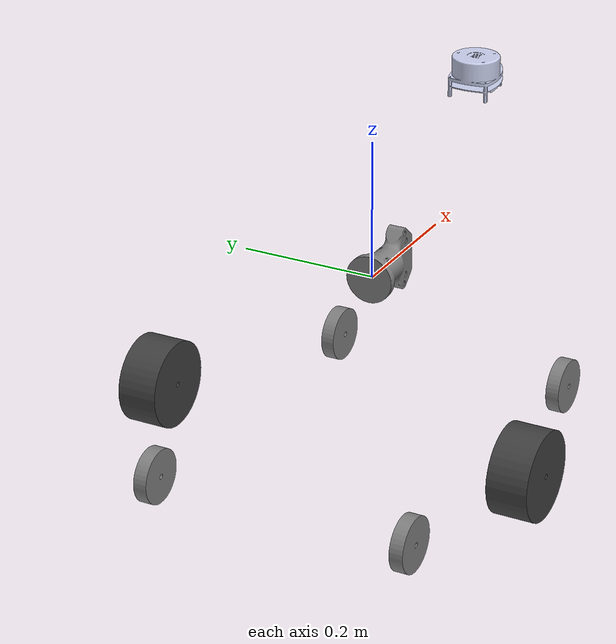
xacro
<?xml version="1.0" encoding="utf-8"?>
<robot xmlns:xacro="http://www.ros.org/wiki/xacro" name="Elevex">

  <!-- BASE_FOOTPRINT LINK -->

  <joint name="base_footprint_joint" type="fixed">
      <parent link="base_link"/>
      <child link="base_footprint"/>
      <origin xyz="0.0488207268870813 0 -0.28" rpy="0 0 0"/>
  </joint>

  <link name="base_footprint">
  </link>

  <link
    name="base_link">
    <inertial>
      <origin
        xyz="0.00426609249383225 0.000877292079499631 0.0902034810968709"
        rpy="0 0 0" />
      <mass
        value="28.9176072607185" />
      <inertia
        ixx="0.603223590621797"
        ixy="6.68320790910261E-05"
        ixz="0.0110170960141918"
        iyy="1.12817185736788"
        iyz="-3.72813828903675E-06"
        izz="1.48515032958934" />
    </inertial>
    <visual>
      <origin
        xyz="0 0 0"
        rpy="0 0 0" />
      <geometry>
        <mesh
          filename="file://$(find robot)/meshes/base_link.STL" />
      </geometry>
      <material
        name="">
        <color
          rgba="0.501960784313725 0.501960784313725 0.501960784313725 1" />
      </material>
    </visual>
    <collision>
      <origin
        xyz="0 0 0"
        rpy="0 0 0" />
      <geometry>
        <mesh
          filename="file://$(find robot)/meshes/base_link.STL" />
      </geometry>
    </collision>
  </link>
  <link
    name="Right_wheel_drive">
    <inertial>
      <origin
        xyz="0 0 -0.03"
        rpy="0 0 0" />
      <mass
        value="0.793377808737566" />
      <inertia
        ixx="0.00107919216433527"
        ixy="7.3436690885674E-21"
        ixz="-1.09101522048314E-19"
        iyy="0.00107919216433527"
        iyz="-7.23962882018601E-20"
        izz="0.00168235764342801" />
    </inertial>
    <visual>
      <origin
        xyz="0 0 0"
        rpy="0 0 0" />
      <geometry>
        <mesh
          filename="file://$(find robot)/meshes/Right_wheel_drive.STL" />
      </geometry>
      <material
        name="">
        <color
          rgba="0.250980392156863 0.250980392156863 0.250980392156863 1" />
      </material>
    </visual>
    <collision>
      <origin
        xyz="0 0 0"
        rpy="0 0 0" />
      <geometry>
        <mesh
          filename="file://$(find robot)/meshes/Right_wheel_drive.STL" />
      </geometry>
    </collision>
  </link>
  <joint
    name="Right_wheel_joint"
    type="continuous">
    <origin
      xyz="-0.048718 -0.29 -0.215"
      rpy="1.5708 0 3.14" />
    <parent
      link="base_link" />
    <child
      link="Right_wheel_drive" />
    <axis
      xyz="0 0 -1" />
    <limit
      lower="0"
      upper="0"
      effort="0"
      velocity="0" />
  </joint>
  <link
    name="LEFT_wheel_drive">
    <inertial>
      <origin
        xyz="2.77555756156289E-17 0 0.03"
        rpy="0 0 0" />
      <mass
        value="0.793377808737566" />
      <inertia
        ixx="0.00107919216433527"
        ixy="7.35016536443278E-21"
        ixz="2.31128990003681E-19"
        iyy="0.00107919216433527"
        iyz="6.91140355312497E-20"
        izz="0.00168235764342801" />
    </inertial>
    <visual>
      <origin
        xyz="0 0 0"
        rpy="0 0 0" />
      <geometry>
        <mesh
          filename="file://$(find robot)/meshes/LEFT_wheel_drive.STL" />
      </geometry>
      <material
        name="">
        <color
          rgba="0.250980392156863 0.250980392156863 0.250980392156863 1" />
      </material>
    </visual>
    <collision>
      <origin
        xyz="0 0 0"
        rpy="0 0 0" />
      <geometry>
        <mesh
          filename="file://$(find robot)/meshes/LEFT_wheel_drive.STL" />
      </geometry>
    </collision>
  </link>
  <joint
    name="left_wheel_joint"
    type="continuous">
    <origin
      xyz="-0.048718 0.29 -0.215"
      rpy="1.5708 0 3.14" />
    <parent
      link="base_link" />
    <child
      link="LEFT_wheel_drive" />
    <axis
      xyz="0 0 -1" />
    <limit
      lower="0"
      upper="0"
      effort="0"
      velocity="0" />
  </joint>
  <link
    name="LF_caster">
    <inertial>
      <origin
        xyz="0 0 -0.01"
        rpy="0 0 0" />
      <mass
        value="0.0995256552657248" />
      <inertia
        ixx="4.35258865695436E-05"
        ixy="-1.29620925280002E-21"
        ixz="1.77745332497369E-21"
        iyy="4.35258865695436E-05"
        iyz="1.82300460930321E-22"
        izz="8.04167294547056E-05" />
    </inertial>
    <visual>
      <origin
        xyz="0 0 0"
        rpy="0 0 0" />
      <geometry>
        <mesh
          filename="file://$(find robot)/meshes/LF_caster.STL" />
      </geometry>
      <material
        name="">
        <color
          rgba="0.501960784313725 0.501960784313725 0.501960784313725 1" />
      </material>
    </visual>
    <collision>
      <origin
        xyz="0 0 0"
        rpy="0 0 0" />
      <geometry>
        <mesh
          filename="file://$(find robot)/meshes/LF_caster.STL" />
      </geometry>
    </collision>
  </link>
  <joint
    name="LF_caster_jont"
    type="fixed">
    <origin
      xyz="-0.25242 -0.195 -0.24"
      rpy="1.5708 0 0" />
    <parent
      link="base_link" />
    <child
      link="LF_caster" />
    <axis
      xyz="0 0 -1" />
    <limit
      lower="0"
      upper="0"
      effort="0"
      velocity="0" />
  </joint>
  <link
    name="RF_caster">
    <inertial>
      <origin
        xyz="0 0 0.01"
        rpy="0 0 0" />
      <mass
        value="0.0995256552657247" />
      <inertia
        ixx="4.35258865695436E-05"
        ixy="-1.29629003215672E-21"
        ixz="-9.66256689579499E-21"
        iyy="4.35258865695436E-05"
        iyz="1.62909581375183E-22"
        izz="8.04167294547055E-05" />
    </inertial>
    <visual>
      <origin
        xyz="0 0 0"
        rpy="0 0 0" />
      <geometry>
        <mesh
          filename="file://$(find robot)/meshes/RF_caster.STL" />
      </geometry>
      <material
        name="">
        <color
          rgba="0.501960784313725 0.501960784313725 0.501960784313725 1" />
      </material>
    </visual>
    <collision>
      <origin
        xyz="0 0 0"
        rpy="0 0 0" />
      <geometry>
        <mesh
          filename="file://$(find robot)/meshes/RF_caster.STL" />
      </geometry>
    </collision>
  </link>
  <joint
    name="RF_caster_joint"
    type="fixed">
    <origin
      xyz="-0.25242 0.195 -0.24"
      rpy="1.5708 0 0" />
    <parent
      link="base_link" />
    <child
      link="RF_caster" />
    <axis
      xyz="0 0 -1" />
    <limit
      lower="0"
      upper="0"
      effort="0"
      velocity="0" />
  </joint>
  <link
    name="LR_Caster">
    <inertial>
      <origin
        xyz="0 0 -0.00999999999999995"
        rpy="0 0 0" />
      <mass
        value="0.0995256552657247" />
      <inertia
        ixx="4.35258865695436E-05"
        ixy="1.29620925280002E-21"
        ixz="6.12311305916317E-21"
        iyy="4.35258865695436E-05"
        iyz="-1.62909581375143E-22"
        izz="8.04167294547056E-05" />
    </inertial>
    <visual>
      <origin
        xyz="0 0 0"
        rpy="0 0 0" />
      <geometry>
        <mesh
          filename="file://$(find robot)/meshes/LR_Caster.STL" />
      </geometry>
      <material
        name="">
        <color
          rgba="0.501960784313725 0.501960784313725 0.501960784313725 1" />
      </material>
    </visual>
    <collision>
      <origin
        xyz="0 0 0"
        rpy="0 0 0" />
      <geometry>
        <mesh
          filename="file://$(find robot)/meshes/LR_Caster.STL" />
      </geometry>
    </collision>
  </link>
  <joint
    name="LR_Caster_joint"
    type="fixed">
    <origin
      xyz="0.25242 -0.195 -0.24"
      rpy="1.5708 0 0" />
    <parent
      link="base_link" />
    <child
      link="LR_Caster" />
    <axis
      xyz="0 0 1" />
    <limit
      lower="0"
      upper="0"
      effort="0"
      velocity="0" />
  </joint>
  <link
    name="RR_caster">
    <inertial>
      <origin
        xyz="2.77555756156289E-17 0 0.01"
        rpy="0 0 0" />
      <mass
        value="0.0995256552657247" />
      <inertia
        ixx="4.35258865695436E-05"
        ixy="1.29629003215672E-21"
        ixz="1.78627658484092E-21"
        iyy="4.35258865695436E-05"
        iyz="-4.1128303054583E-23"
        izz="8.04167294547056E-05" />
    </inertial>
    <visual>
      <origin
        xyz="0 0 0"
        rpy="0 0 0" />
      <geometry>
        <mesh
          filename="file://$(find robot)/meshes/RR_caster.STL" />
      </geometry>
      <material
        name="">
        <color
          rgba="0.501960784313725 0.501960784313725 0.501960784313725 1" />
      </material>
    </visual>
    <collision>
      <origin
        xyz="0 0 0"
        rpy="0 0 0" />
      <geometry>
        <mesh
          filename="file://$(find robot)/meshes/RR_caster.STL" />
      </geometry>
    </collision>
  </link>
  <joint
    name="RR_caster_joint"
    type="fixed">
    <origin
      xyz="0.25242 0.195 -0.24"
      rpy="1.5708 0 0" />
    <parent
      link="base_link" />
    <child
      link="RR_caster" />
    <axis
      xyz="0 0 1" />
    <limit
      lower="0"
      upper="0"
      effort="0"
      velocity="0" />
  </joint>
  <link
    name="laser_frame">
    <inertial>
      <origin
        xyz="0.00676926455514876 -7.86097937086061E-05 -0.0224318722671598"
        rpy="0 0 0" />
      <mass
        value="1.33076913637071" />
      <inertia
        ixx="0.000615074581322263"
        ixy="-7.4014746598904E-06"
        ixz="0.000158273208466072"
        iyy="0.00096054069474905"
        iyz="-7.00471688546758E-08"
        izz="0.00109815200027136" />
    </inertial>
    <visual>
      <origin
        xyz="0 0 0"
        rpy="0 0 0" />
      <geometry>
        <mesh
          filename="file://$(find robot)/meshes/Lidar.STL" />
      </geometry>
      <material
        name="">
        <color
          rgba="0.792156862745098 0.819607843137255 0.933333333333333 1" />
      </material>
    </visual>
    <collision>
      <origin
        xyz="0 0 0"
        rpy="0 0 0" />
      <geometry>
        <mesh
          filename="file://$(find robot)/meshes/Lidar.STL" />
      </geometry>
    </collision>
  </link>
  <joint
    name="laser_joint"
    type="fixed">
    <origin
      xyz="0.321506079696644 -0.001950279665067 0.2187"
      rpy="0 0 0" />
    <parent
      link="base_link" />
    <child
      link="laser_frame" />
    <axis
      xyz="0 1 0" />
    <limit
      lower="0"
      upper="0"
      effort="0"
      velocity="0" />
  </joint>

  <xacro:include filename="ros2_control.xacro" />

</robot>
